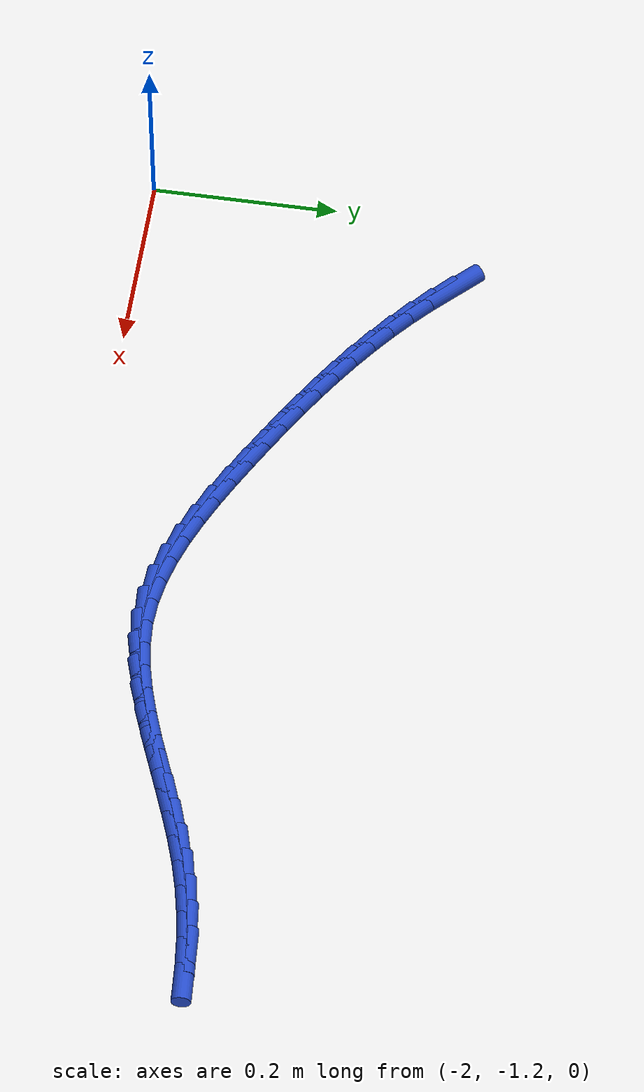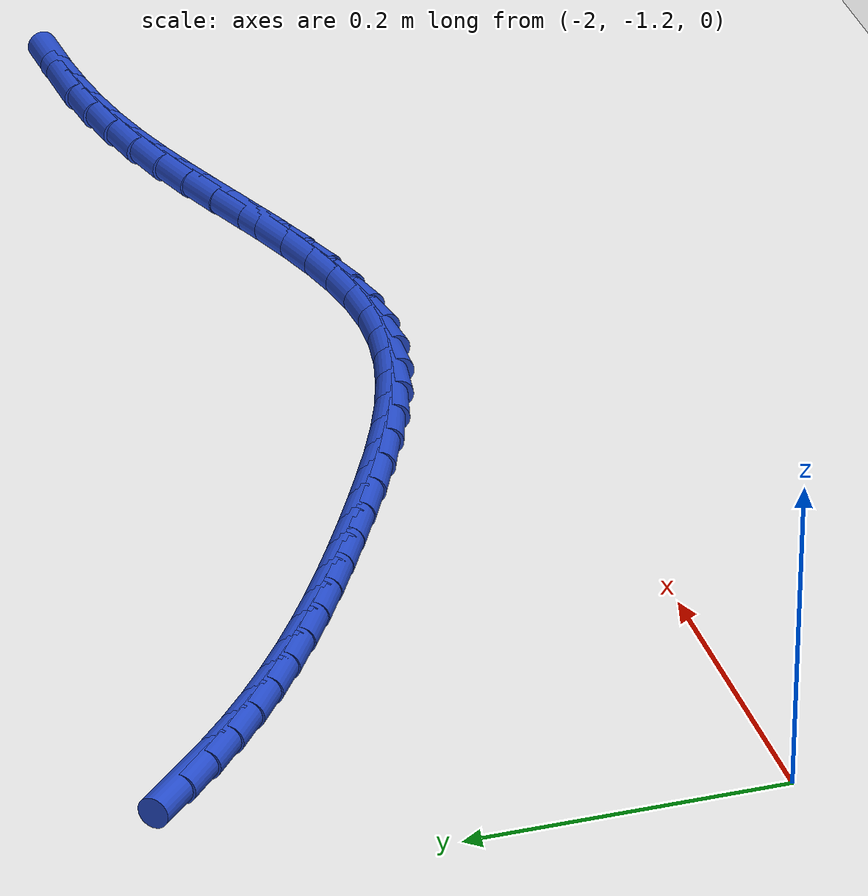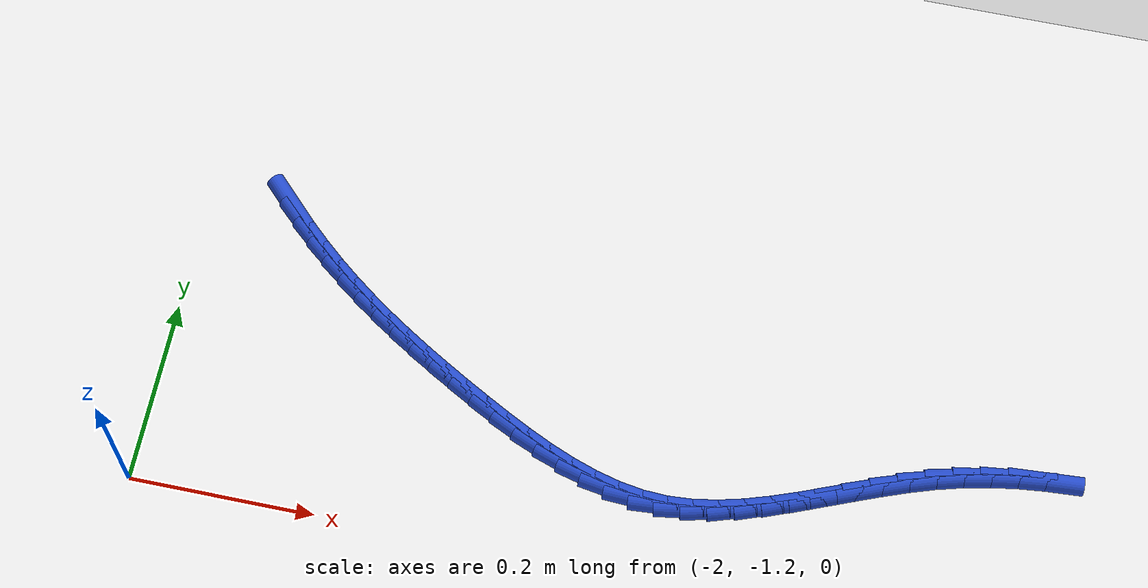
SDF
<sdf version="1.6">
 <world name="default">
  <model name="ground_plane">
   <static>1</static>
   <link name="link">
    <collision name="collision">
     <geometry><plane><normal>0 0 1</normal><size>100 100</size></plane></geometry>
     <surface><friction><ode><mu>100</mu><mu2>50</mu2></ode></friction></surface>
    </collision>
    <visual name="visual">
     <cast_shadows>0</cast_shadows>
     <geometry><plane><normal>0 0 1</normal><size>100 100</size></plane></geometry>
     <material>
      <script><uri>file://media/materials/scripts/gazebo.material</uri><name>Gazebo/WhiteGlow</name></script>
     </material>
    </visual>
   </link>
  </model>
  <model name="line">
   <link name="link_173">
    <pose>-1.906804396699577 -0.8645848624317355 0.01 0 1.57 -0.7935375937947828</pose>
    <collision name="collision">
     <geometry><cylinder><radius>0.01</radius><length>0.08</length></cylinder></geometry>
    </collision>
    <visual name="visual">
     <material>
      <script><name>Gazebo/Blue</name><uri>file://media/materials/scripts/gazebo.material</uri></script>
     </material>
     <geometry><cylinder><radius>0.01</radius><length>0.08</length></cylinder></geometry>
    </visual>
   </link>
   <link name="link_174">
    <pose>-1.8868709688742387 -0.884845453904471 0.01 0 1.57 -0.7506215768928989</pose>
    <collision name="collision">
     <geometry><cylinder><radius>0.01</radius><length>0.08</length></cylinder></geometry>
    </collision>
    <visual name="visual">
     <material>
      <script><name>Gazebo/Blue</name><uri>file://media/materials/scripts/gazebo.material</uri></script>
     </material>
     <geometry><cylinder><radius>0.01</radius><length>0.08</length></cylinder></geometry>
    </visual>
   </link>
   <link name="link_175">
    <pose>-1.8662278709164508 -0.9041004719482797 0.01 0 1.57 -0.7109669011774031</pose>
    <collision name="collision">
     <geometry><cylinder><radius>0.01</radius><length>0.08</length></cylinder></geometry>
    </collision>
    <visual name="visual">
     <material>
      <script><name>Gazebo/Blue</name><uri>file://media/materials/scripts/gazebo.material</uri></script>
     </material>
     <geometry><cylinder><radius>0.01</radius><length>0.08</length></cylinder></geometry>
    </visual>
   </link>
   <link name="link_176">
    <pose>-1.8449827069612346 -0.9223970472548075 0.01 0 1.57 -0.6739324222963679</pose>
    <collision name="collision">
     <geometry><cylinder><radius>0.01</radius><length>0.08</length></cylinder></geometry>
    </collision>
    <visual name="visual">
     <material>
      <script><name>Gazebo/Blue</name><uri>file://media/materials/scripts/gazebo.material</uri></script>
     </material>
     <geometry><cylinder><radius>0.01</radius><length>0.08</length></cylinder></geometry>
    </visual>
   </link>
   <link name="link_177">
    <pose>-1.823156097525815 -0.9398294120167391 0.01 0 1.57 -0.6398148666589141</pose>
    <collision name="collision">
     <geometry><cylinder><radius>0.01</radius><length>0.08</length></cylinder></geometry>
    </collision>
    <visual name="visual">
     <material>
      <script><name>Gazebo/Blue</name><uri>file://media/materials/scripts/gazebo.material</uri></script>
     </material>
     <geometry><cylinder><radius>0.01</radius><length>0.08</length></cylinder></geometry>
    </visual>
   </link>
   <link name="link_178">
    <pose>-1.8007666815492875 -0.9564928714484013 0.01 0 1.57 -0.6088608700125043</pose>
    <collision name="collision">
     <geometry><cylinder><radius>0.01</radius><length>0.08</length></cylinder></geometry>
    </collision>
    <visual name="visual">
     <material>
      <script><name>Gazebo/Blue</name><uri>file://media/materials/scripts/gazebo.material</uri></script>
     </material>
     <geometry><cylinder><radius>0.01</radius><length>0.08</length></cylinder></geometry>
    </visual>
   </link>
   <link name="link_179">
    <pose>-1.7778330979707504 -0.9724827307641186 0.01 0 1.57 -0.5812484760540536</pose>
    <collision name="collision">
     <geometry><cylinder><radius>0.01</radius><length>0.08</length></cylinder></geometry>
    </collision>
    <visual name="visual">
     <material>
      <script><name>Gazebo/Blue</name><uri>file://media/materials/scripts/gazebo.material</uri></script>
     </material>
     <geometry><cylinder><radius>0.01</radius><length>0.08</length></cylinder></geometry>
    </visual>
   </link>
   <link name="link_180">
    <pose>-1.754373985729299 -0.9878942951782173 0.01 0 1.57 -0.5570923499653017</pose>
    <collision name="collision">
     <geometry><cylinder><radius>0.01</radius><length>0.08</length></cylinder></geometry>
    </collision>
    <visual name="visual">
     <material>
      <script><name>Gazebo/Blue</name><uri>file://media/materials/scripts/gazebo.material</uri></script>
     </material>
     <geometry><cylinder><radius>0.01</radius><length>0.08</length></cylinder></geometry>
    </visual>
   </link>
   <link name="link_181">
    <pose>-1.730407983764032 -1.002822869905022 0.01 0 1.57 -0.5364512808940642</pose>
    <collision name="collision">
     <geometry><cylinder><radius>0.01</radius><length>0.08</length></cylinder></geometry>
    </collision>
    <visual name="visual">
     <material>
      <script><name>Gazebo/Blue</name><uri>file://media/materials/scripts/gazebo.material</uri></script>
     </material>
     <geometry><cylinder><radius>0.01</radius><length>0.08</length></cylinder></geometry>
    </visual>
   </link>
   <link name="link_182">
    <pose>-1.7059537310140451 -1.0173637601588579 0.01 0 1.57 -0.5193367233126422</pose>
    <collision name="collision">
     <geometry><cylinder><radius>0.01</radius><length>0.08</length></cylinder></geometry>
    </collision>
    <visual name="visual">
     <material>
      <script><name>Gazebo/Blue</name><uri>file://media/materials/scripts/gazebo.material</uri></script>
     </material>
     <geometry><cylinder><radius>0.01</radius><length>0.08</length></cylinder></geometry>
    </visual>
   </link>
   <link name="link_183">
    <pose>-1.6810298664184347 -1.0316122711540516 0.01 0 1.57 -0.5057213134360599</pose>
    <collision name="collision">
     <geometry><cylinder><radius>0.01</radius><length>0.08</length></cylinder></geometry>
    </collision>
    <visual name="visual">
     <material>
      <script><name>Gazebo/Blue</name><uri>file://media/materials/scripts/gazebo.material</uri></script>
     </material>
     <geometry><cylinder><radius>0.01</radius><length>0.08</length></cylinder></geometry>
    </visual>
   </link>
   <link name="link_184">
    <pose>-1.6556550291169698 -1.0456637061244354 0.01 0 1.57 -0.49289819221230224</pose>
    <collision name="collision">
     <geometry><cylinder><radius>0.01</radius><length>0.08</length></cylinder></geometry>
    </collision>
    <visual name="visual">
     <material>
      <script><name>Gazebo/Blue</name><uri>file://media/materials/scripts/gazebo.material</uri></script>
     </material>
     <geometry><cylinder><radius>0.01</radius><length>0.08</length></cylinder></geometry>
    </visual>
   </link>
   <link name="link_185">
    <pose>-1.6298573094650597 -1.0595200910667806 0.01 0 1.57 -0.471017715654866</pose>
    <collision name="collision">
     <geometry><cylinder><radius>0.01</radius><length>0.08</length></cylinder></geometry>
    </collision>
    <visual name="visual">
     <material>
      <script><name>Gazebo/Blue</name><uri>file://media/materials/scripts/gazebo.material</uri></script>
     </material>
     <geometry><cylinder><radius>0.01</radius><length>0.08</length></cylinder></geometry>
    </visual>
   </link>
   <link name="link_186">
    <pose>-1.603699509680805 -1.0728408688892825 0.01 0 1.57 -0.4373720661390026</pose>
    <collision name="collision">
     <geometry><cylinder><radius>0.01</radius><length>0.08</length></cylinder></geometry>
    </collision>
    <visual name="visual">
     <material>
      <script><name>Gazebo/Blue</name><uri>file://media/materials/scripts/gazebo.material</uri></script>
     </material>
     <geometry><cylinder><radius>0.01</radius><length>0.08</length></cylinder></geometry>
    </visual>
   </link>
   <link name="link_187">
    <pose>-1.5772523990122773 -1.0852068531923613 0.01 0 1.57 -0.390992719290504</pose>
    <collision name="collision">
     <geometry><cylinder><radius>0.01</radius><length>0.08</length></cylinder></geometry>
    </collision>
    <visual name="visual">
     <material>
      <script><name>Gazebo/Blue</name><uri>file://media/materials/scripts/gazebo.material</uri></script>
     </material>
     <geometry><cylinder><radius>0.01</radius><length>0.08</length></cylinder></geometry>
    </visual>
   </link>
   <link name="link_188">
    <pose>-1.5505867467075527 -1.0961988575764372 0.01 0 1.57 -0.33048635693313155</pose>
    <collision name="collision">
     <geometry><cylinder><radius>0.01</radius><length>0.08</length></cylinder></geometry>
    </collision>
    <visual name="visual">
     <material>
      <script><name>Gazebo/Blue</name><uri>file://media/materials/scripts/gazebo.material</uri></script>
     </material>
     <geometry><cylinder><radius>0.01</radius><length>0.08</length></cylinder></geometry>
    </visual>
   </link>
   <link name="link_189">
    <pose>-1.5237733220147032 -1.1053976956419314 0.01 0 1.57 -0.2541929826406027</pose>
    <collision name="collision">
     <geometry><cylinder><radius>0.01</radius><length>0.08</length></cylinder></geometry>
    </collision>
    <visual name="visual">
     <material>
      <script><name>Gazebo/Blue</name><uri>file://media/materials/scripts/gazebo.material</uri></script>
     </material>
     <geometry><cylinder><radius>0.01</radius><length>0.08</length></cylinder></geometry>
    </visual>
   </link>
   <link name="link_190">
    <pose>-1.4968828941818024 -1.1123841809892618 0.01 0 1.57 -0.16052093277324356</pose>
    <collision name="collision">
     <geometry><cylinder><radius>0.01</radius><length>0.08</length></cylinder></geometry>
    </collision>
    <visual name="visual">
     <material>
      <script><name>Gazebo/Blue</name><uri>file://media/materials/scripts/gazebo.material</uri></script>
     </material>
     <geometry><cylinder><radius>0.01</radius><length>0.08</length></cylinder></geometry>
    </visual>
   </link>
   <link name="link_191">
    <pose>-1.469986232456924 -1.1167391272188505 0.01 0 1.57 -0.04872529095541621</pose>
    <collision name="collision">
     <geometry><cylinder><radius>0.01</radius><length>0.08</length></cylinder></geometry>
    </collision>
    <visual name="visual">
     <material>
      <script><name>Gazebo/Blue</name><uri>file://media/materials/scripts/gazebo.material</uri></script>
     </material>
     <geometry><cylinder><radius>0.01</radius><length>0.08</length></cylinder></geometry>
    </visual>
   </link>
   <link name="link_192">
    <pose>-1.4431535810018497 -1.1180475916307 0.01 0 1.57 0.06866616528824065</pose>
    <collision name="collision">
     <geometry><cylinder><radius>0.01</radius><length>0.08</length></cylinder></geometry>
    </collision>
    <visual name="visual">
     <material>
      <script><name>Gazebo/Blue</name><uri>file://media/materials/scripts/gazebo.material</uri></script>
     </material>
     <geometry><cylinder><radius>0.01</radius><length>0.08</length></cylinder></geometry>
    </visual>
   </link>
   <link name="link_193">
    <pose>-1.416416316464419 -1.1162087552319842 0.01 0 1.57 0.16939366220287128</pose>
    <collision name="collision">
     <geometry><cylinder><radius>0.01</radius><length>0.08</length></cylinder></geometry>
    </collision>
    <visual name="visual">
     <material>
      <script><name>Gazebo/Blue</name><uri>file://media/materials/scripts/gazebo.material</uri></script>
     </material>
     <geometry><cylinder><radius>0.01</radius><length>0.08</length></cylinder></geometry>
    </visual>
   </link>
   <link name="link_194">
    <pose>-1.389740906414605 -1.1116463882845202 0.01 0 1.57 0.2502322776090107</pose>
    <collision name="collision">
     <geometry><cylinder><radius>0.01</radius><length>0.08</length></cylinder></geometry>
    </collision>
    <visual name="visual">
     <material>
      <script><name>Gazebo/Blue</name><uri>file://media/materials/scripts/gazebo.material</uri></script>
     </material>
     <geometry><cylinder><radius>0.01</radius><length>0.08</length></cylinder></geometry>
    </visual>
   </link>
   <link name="link_195">
    <pose>-1.3630876516894972 -1.1048341000235653 0.01 0 1.57 0.31153660517632387</pose>
    <collision name="collision">
     <geometry><cylinder><radius>0.01</radius><length>0.08</length></cylinder></geometry>
    </collision>
    <visual name="visual">
     <material>
      <script><name>Gazebo/Blue</name><uri>file://media/materials/scripts/gazebo.material</uri></script>
     </material>
     <geometry><cylinder><radius>0.01</radius><length>0.08</length></cylinder></geometry>
    </visual>
   </link>
   <link name="link_196">
    <pose>-1.336416853126183 -1.0962454996843762 0.01 0 1.57 0.3544433591163752</pose>
    <collision name="collision">
     <geometry><cylinder><radius>0.01</radius><length>0.08</length></cylinder></geometry>
    </collision>
    <visual name="visual">
     <material>
      <script><name>Gazebo/Blue</name><uri>file://media/materials/scripts/gazebo.material</uri></script>
     </material>
     <geometry><cylinder><radius>0.01</radius><length>0.08</length></cylinder></geometry>
    </visual>
   </link>
   <link name="link_197">
    <pose>-1.309688811561753 -1.086354196502211 0.01 0 1.57 0.38019793185610307</pose>
    <collision name="collision">
     <geometry><cylinder><radius>0.01</radius><length>0.08</length></cylinder></geometry>
    </collision>
    <visual name="visual">
     <material>
      <script><name>Gazebo/Blue</name><uri>file://media/materials/scripts/gazebo.material</uri></script>
     </material>
     <geometry><cylinder><radius>0.01</radius><length>0.08</length></cylinder></geometry>
    </visual>
   </link>
   <link name="link_198">
    <pose>-1.2828638278332938 -1.075633799712326 0.01 0 1.57 0.3897833583178169</pose>
    <collision name="collision">
     <geometry><cylinder><radius>0.01</radius><length>0.08</length></cylinder></geometry>
    </collision>
    <visual name="visual">
     <material>
      <script><name>Gazebo/Blue</name><uri>file://media/materials/scripts/gazebo.material</uri></script>
     </material>
     <geometry><cylinder><radius>0.01</radius><length>0.08</length></cylinder></geometry>
    </visual>
   </link>
   <link name="link_199">
    <pose>-1.2559022027778957 -1.064557918549979 0.01 0 1.57 0.383760382313514</pose>
    <collision name="collision">
     <geometry><cylinder><radius>0.01</radius><length>0.08</length></cylinder></geometry>
    </collision>
    <visual name="visual">
     <material>
      <script><name>Gazebo/Blue</name><uri>file://media/materials/scripts/gazebo.material</uri></script>
     </material>
     <geometry><cylinder><radius>0.01</radius><length>0.08</length></cylinder></geometry>
    </visual>
   </link>
   <link name="link_200">
    <pose>-1.2287642372326455 -1.0536001622504263 0.01 0 1.57 0.3622362733409142</pose>
    <collision name="collision">
     <geometry><cylinder><radius>0.01</radius><length>0.08</length></cylinder></geometry>
    </collision>
    <visual name="visual">
     <material>
      <script><name>Gazebo/Blue</name><uri>file://media/materials/scripts/gazebo.material</uri></script>
     </material>
     <geometry><cylinder><radius>0.01</radius><length>0.08</length></cylinder></geometry>
    </visual>
   </link>
   <link name="link_201">
    <pose>-1.2014102320346334 -1.0432341400489262 0.01 0 1.57 0.32492315716290066</pose>
    <collision name="collision">
     <geometry><cylinder><radius>0.01</radius><length>0.08</length></cylinder></geometry>
    </collision>
    <visual name="visual">
     <material>
      <script><name>Gazebo/Blue</name><uri>file://media/materials/scripts/gazebo.material</uri></script>
     </material>
     <geometry><cylinder><radius>0.01</radius><length>0.08</length></cylinder></geometry>
    </visual>
   </link>
   <link name="link_202">
    <pose>-1.1738004880209467 -1.0339334611807347 0.01 0 1.57 0.27210653762238385</pose>
    <collision name="collision">
     <geometry><cylinder><radius>0.01</radius><length>0.08</length></cylinder></geometry>
    </collision>
    <visual name="visual">
     <material>
      <script><name>Gazebo/Blue</name><uri>file://media/materials/scripts/gazebo.material</uri></script>
     </material>
     <geometry><cylinder><radius>0.01</radius><length>0.08</length></cylinder></geometry>
    </visual>
   </link>
   <link name="link_203">
    <pose>-1.1458997363089485 -1.0261483883620346 0.01 0 1.57 0.2145432193187213</pose>
    <collision name="collision">
     <geometry><cylinder><radius>0.01</radius><length>0.08</length></cylinder></geometry>
    </collision>
    <visual name="visual">
     <material>
      <script><name>Gazebo/Blue</name><uri>file://media/materials/scripts/gazebo.material</uri></script>
     </material>
     <geometry><cylinder><radius>0.01</radius><length>0.08</length></cylinder></geometry>
    </visual>
   </link>
   <link name="link_204">
    <pose>-1.117733093009582 -1.0200109698129511 0.01 0 1.57 0.16035551172052093</pose>
    <collision name="collision">
     <geometry><cylinder><radius>0.01</radius><length>0.08</length></cylinder></geometry>
    </collision>
    <visual name="visual">
     <material>
      <script><name>Gazebo/Blue</name><uri>file://media/materials/scripts/gazebo.material</uri></script>
     </material>
     <geometry><cylinder><radius>0.01</radius><length>0.08</length></cylinder></geometry>
    </visual>
   </link>
   <link name="link_205">
    <pose>-1.0893693123461177 -1.0154232913225498 0.01 0 1.57 0.10979990061630539</pose>
    <collision name="collision">
     <geometry><cylinder><radius>0.01</radius><length>0.08</length></cylinder></geometry>
    </collision>
    <visual name="visual">
     <material>
      <script><name>Gazebo/Blue</name><uri>file://media/materials/scripts/gazebo.material</uri></script>
     </material>
     <geometry><cylinder><radius>0.01</radius><length>0.08</length></cylinder></geometry>
    </visual>
   </link>
   <link name="link_206">
    <pose>-1.060878118280847 -1.0122823283868594 0.01 0 1.57 0.062871221588588</pose>
    <collision name="collision">
     <geometry><cylinder><radius>0.01</radius><length>0.08</length></cylinder></geometry>
    </collision>
    <visual name="visual">
     <material>
      <script><name>Gazebo/Blue</name><uri>file://media/materials/scripts/gazebo.material</uri></script>
     </material>
     <geometry><cylinder><radius>0.01</radius><length>0.08</length></cylinder></geometry>
    </visual>
   </link>
  </model>
 </world>
</sdf>
